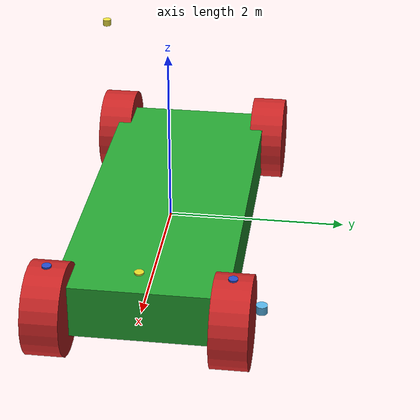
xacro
<?xml version="1.0"?>
<robot name="steer_bot" xmlns:xacro="http://wiki.ros.org/xacro">
  <!-- Include xacro for inertials, materials and wheels -->
  <xacro:arg name="gpu" default="false"/>
  <xacro:property name="gpu" value="$(arg gpu)" />

  <xacro:include filename="$(find gmc_simulation_truck)/urdf/wheel.xacro"/>

  <xacro:property name="robot_namespace" value="/steer_bot"/>

  <!-- Gazebo plugins -->
  <gazebo>
    <!-- Load ros_control plugin using the steer_bot_hardware_gazebo
    implementation of the hardware_interface::RobotHW -->
    <plugin name="gazebo_ros_control" filename="libgazebo_ros_control.so">
      <robotNamespace>${robot_namespace}</robotNamespace>
      <robotSimType>steer_bot_hardware_gazebo/SteerBotHardwareGazebo</robotSimType>
      <legacyModeNS>false</legacyModeNS>
    </plugin>
  </gazebo>

  <!-- Math constants -->
  <xacro:property name="deg_to_rad" value="0.01745329251994329577"/>

  <!-- Robot base dimensions -->
  <xacro:property name="base_length" value="4.19" />
  <xacro:property name="base_width" value="1.818" />
  <xacro:property name="base_height" value="0.6" />
  <xacro:property name="base_mass" value="1" />

  <!-- Wheel link dimensions -->
  <xacro:property name="wheel_radius" value="0.5" />
  <xacro:property name="wheel_thickness" value="0.4" />
  <xacro:property name="wheel_mass" value="1" />

  <!-- Steering link dimensions -->
  <xacro:property name="steer_radius" value="0.05" />
  <xacro:property name="steer_thickness" value="0.02" />
  <xacro:property name="steer_mass" value="1" />

  <!-- Axle positions -->
  <xacro:property name="axle_offset" value="0.05" />
  <xacro:property name="steer_offset" value="0.02" />

  <!-- Base link -->
  <link name="base_link">
    <visual>
      <origin xyz="0 0 0" rpy="0 0 0"/>
      <geometry>
        <box size="${base_length} ${base_width} ${base_height}"/>
      </geometry>
      <material name="green" />
    </visual>
    <collision>
      <origin xyz="0 0 0" rpy="0 0 0"/>
      <geometry>
        <box size="${base_length} ${base_width} ${base_height}"/>
      </geometry>
    </collision>
    <xacro:solid_cuboid_inertial
        rpy="0 0 0" xyz="0 0 0"
        mass="${base_mass}"
        x="${base_length}" y="${base_width}" z="${base_height}" />
  </link>

  <!-- Front steer and rear wheel joints required for ackermann_steering_controller -->
  <xacro:front_steer
    name="front"
    parent="base"
    steer_radius="${steer_radius}"
    steer_thickness="${steer_thickness}"
    steer_mass="${steer_mass}"
    base_length="${base_length}"
    base_width="${base_width}"
    axle_offset="${axle_offset}"
    steer_height="${wheel_radius+steer_offset}">
  </xacro:front_steer>

  <xacro:rear_wheel
    name="rear"
    parent="base"
    wheel_radius="${wheel_radius/4}"
    wheel_thickness="${wheel_thickness/2}"
    wheel_mass="${wheel_mass/32}">
    <origin xyz="${-base_length/2+axle_offset} 0 0" rpy="${-90 * deg_to_rad} 0 0"/>
  </xacro:rear_wheel>

  <!-- Steerable front wheels -->
  <xacro:front_wheel_lr
    name="front_right"
    parent="base"
    reflect="-1"
    wheel_radius="${wheel_radius}"
    wheel_thickness="${wheel_thickness}"
    wheel_mass="${wheel_mass}"
    steer_radius="${steer_radius}"
    steer_thickness="${steer_thickness}"
    steer_mass="${steer_mass}"
    base_length="${base_length}"
    base_width="${base_width}"
    axle_offset="${axle_offset}"
    steer_height="${wheel_radius+steer_offset}">
  </xacro:front_wheel_lr>
  <xacro:front_wheel_lr
    name="front_left"
    parent="base"
    reflect="1"
    wheel_radius="${wheel_radius}"
    wheel_thickness="${wheel_thickness}"
    wheel_mass="${wheel_mass}"
    steer_radius="${steer_radius}"
    steer_thickness="${steer_thickness}"
    steer_mass="${steer_mass}"
    base_length="${base_length}"
    base_width="${base_width}"
    axle_offset="${axle_offset}"
    steer_height="${wheel_radius+steer_offset}">
  </xacro:front_wheel_lr>

  <!-- Rear wheels -->
  <xacro:rear_wheel_lr
    name="rear_right"
    parent="base"
    wheel_radius="${wheel_radius}"
    wheel_thickness="${wheel_thickness}"
    wheel_mass="${wheel_mass}">
    <origin xyz="${-base_length/2+axle_offset} ${-base_width/2-axle_offset} 0" rpy="${-90 * deg_to_rad} 0 0"/>
  </xacro:rear_wheel_lr>
  <xacro:rear_wheel_lr
    name="rear_left"
    parent="base"
    wheel_radius="${wheel_radius}"
    wheel_thickness="${wheel_thickness}"
    wheel_mass="${wheel_mass}">
    <origin xyz="${-base_length/2+axle_offset} ${+base_width/2+axle_offset} 0" rpy="${-90 * deg_to_rad} 0 0"/>
  </xacro:rear_wheel_lr>

  <xacro:include filename="$(find robosense_description)/urdf/RS-16.urdf.xacro"/>
  <xacro:RS-16 parent="base_link" name="rslidar_front" topic="rslidar_front" hz="20" samples="900" gpu="${gpu}">
    <origin xyz="3.2 1.345 1.0" rpy="0.0 0 0" />
  </xacro:RS-16>

  <xacro:include filename="$(find robosense_description)/urdf/RS-16.urdf.xacro"/>
  <xacro:RS-16 parent="base_link" name="rslidar_back" topic="rslidar_back" hz="20" samples="900" gpu="${gpu}">
    <origin xyz="-3.2 -1.345 1.0" rpy="0.0 0 3.14159" />
  </xacro:RS-16>

  <!-- Colour -->
  <gazebo reference="base_link">
    <material>Gazebo/Green</material>
  </gazebo>
</robot>

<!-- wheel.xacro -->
<robot name="wheel" xmlns:xacro="http://wiki.ros.org/xacro">
  <!-- Include xacro for materials and inertials -->
  <xacro:include filename="$(find gmc_simulation_truck)/urdf/materials.xacro"/>
  <xacro:include filename="$(find gmc_simulation_truck)/urdf/inertials.xacro"/>

  <!-- Properties -->
  <xacro:property name="steer_effort" value="10.0"/>
  <xacro:property name="steer_velocity" value="5.0"/>
  <xacro:property name="steer_limit_deg" value="45.0"/>

  <!-- Bicycle model front steering link (required for steer_drive_controller) -->
  <xacro:macro name="front_steer"
    params="
      name
      parent
      steer_radius
      steer_thickness
      steer_mass
      base_length
      base_width
      axle_offset
      steer_height">
    <link name="${name}_steer_link">
      <visual>
        <origin xyz="0 0 0" rpy="0 0 0"/>
        <geometry>
          <cylinder radius="${steer_radius}" length="${steer_thickness}"/>
        </geometry>
        <material name="yellow" />
      </visual>
      <collision>
        <origin xyz="0 0 0" rpy="0 0 0"/>
        <geometry>
          <cylinder radius="${steer_radius}" length="${steer_thickness}"/>
        </geometry>
      </collision>
      <xacro:solid_cylinder_inertial
          rpy="0 0 0" xyz="0 0 0"
          mass="${steer_mass}"
          radius="${steer_radius}" length="${steer_thickness}" />
    </link>

    <joint name="${name}_steer_joint" type="revolute">
      <parent link="${parent}_link"/>
      <child link="${name}_steer_link"/>
      <origin xyz="${base_length/2-axle_offset} 0 ${steer_height}" rpy="0 0 0"/>
      <axis xyz="0 0 1"/>
      <limit effort="${steer_effort}"
             lower="${-180.0 * deg_to_rad}" upper="${180.0 * deg_to_rad}"
             velocity="${steer_velocity}"/>
    </joint>

    <transmission name="${name}_steer_joint_trans">
      <type>transmission_interface/SimpleTransmission</type>
      <actuator name="${name}_steer_joint_motor">
        <mechanicalReduction>1</mechanicalReduction>
        <hardwareInterface>hardware_interface/PositionJointInterface</hardwareInterface>
      </actuator>
      <joint name="${name}_steer_joint">
        <hardwareInterface>hardware_interface/PositionJointInterface</hardwareInterface>
      </joint>
    </transmission>

    <gazebo reference="${name}_steer_link">
      <material>Gazebo/Yellow</material>
    </gazebo>
  </xacro:macro>

  <!-- Car steering model front (steerable) wheel links (left/right) -->
  <xacro:macro name="front_wheel_lr"
    params="
      name
      parent
      reflect
      wheel_radius
      wheel_thickness
      wheel_mass
      steer_radius
      steer_thickness
      steer_mass
      base_length
      base_width
      axle_offset
      steer_height">
    <link name="${name}_steer_link">
      <visual>
        <origin xyz="0 0 0" rpy="0 0 0"/>
        <geometry>
          <cylinder radius="${steer_radius}" length="${steer_thickness}"/>
        </geometry>
        <material name="blue" />
      </visual>
      <collision>
        <origin xyz="0 0 0" rpy="0 0 0"/>
        <geometry>
          <cylinder radius="${steer_radius}" length="${steer_thickness}"/>
        </geometry>
      </collision>
      <xacro:solid_cylinder_inertial
          rpy="0 0 0" xyz="0 0 0"
          mass="${steer_mass}"
          radius="${steer_radius}" length="${steer_thickness}" />
    </link>

    <joint name="${name}_steer_joint" type="revolute">
      <parent link="${parent}_link"/>
      <child link="${name}_steer_link"/>
      <origin xyz="${base_length/2-axle_offset} ${reflect*(base_width/2+axle_offset)} ${steer_height}" rpy="0 0 0"/>
      <axis xyz="0 0 1"/>
      <limit effort="${steer_effort}"
             lower="${steer_limit_deg * deg_to_rad * -1.0}" upper="${steer_limit_deg * deg_to_rad}"
             velocity="${steer_velocity}"/>
    </joint>

    <link name="${name}_wheel_link">
      <visual>
        <origin xyz="0 0 0" rpy="0 0 0"/>
        <geometry>
          <cylinder radius="${wheel_radius}" length="${wheel_thickness}"/>
        </geometry>
        <material name="red" />
      </visual>
      <collision>
        <origin xyz="0 0 0" rpy="0 0 0"/>
        <geometry>
          <cylinder radius="${wheel_radius}" length="${wheel_thickness}"/>
        </geometry>
      </collision>
      <xacro:solid_cylinder_inertial
          rpy="0 0 0" xyz="0 0 0"
          mass="${wheel_mass}"
          radius="${wheel_radius}" length="${wheel_thickness}" />
    </link>

    <joint name="${name}_wheel_joint" type="continuous">
      <parent link="${name}_steer_link"/>
      <child link="${name}_wheel_link"/>
      <origin xyz="0 0 ${-steer_height}" rpy="${-90 * deg_to_rad} 0 0"/>
      <axis xyz="0 0 1"/>
    </joint>

    <transmission name="${name}_steer_joint_trans">
      <type>transmission_interface/SimpleTransmission</type>
      <actuator name="${name}_steer_joint_motor">
        <mechanicalReduction>1</mechanicalReduction>
        <hardwareInterface>hardware_interface/PositionJointInterface</hardwareInterface>
      </actuator>
      <joint name="${name}_steer_joint">
        <hardwareInterface>hardware_interface/PositionJointInterface</hardwareInterface>
      </joint>
    </transmission>

    <transmission name="${name}_wheel_joint_trans">
      <type>transmission_interface/SimpleTransmission</type>
      <actuator name="${name}_wheel_joint_motor">
        <mechanicalReduction>1</mechanicalReduction>
        <hardwareInterface>hardware_interface/VelocityJointInterface</hardwareInterface>
      </actuator>
      <joint name="${name}_wheel_joint">
        <hardwareInterface>hardware_interface/VelocityJointInterface</hardwareInterface>
      </joint>
    </transmission>

    <gazebo reference="${name}_steer_link">
      <material>Gazebo/Blue</material>
    </gazebo>

    <gazebo reference="${name}_wheel_link">
      <material>Gazebo/Red</material>
    </gazebo>
  </xacro:macro>

  <!-- Bicycle model rear wheel link (required for steer_drive_controller) -->
  <xacro:macro name="rear_wheel"
    params="
      name
      parent
      wheel_radius
      wheel_thickness
      wheel_mass
      *origin">
    <link name="${name}_wheel_link">
      <visual>
        <origin xyz="0 0 0" rpy="0 0 0"/>
        <geometry>
          <cylinder radius="${wheel_radius}" length="${wheel_thickness}"/>
        </geometry>
        <material name="yellow" />
      </visual>
      <collision>
        <origin xyz="0 0 0" rpy="0 0 0"/>
        <geometry>
          <cylinder radius="${wheel_radius}" length="${wheel_thickness}"/>
        </geometry>
      </collision>
      <xacro:solid_cylinder_inertial
          rpy="0 0 0" xyz="0 0 0"
          mass="${wheel_mass}"
          radius="${wheel_radius}" length="${wheel_thickness}" />
    </link>

    <joint name="${name}_wheel_joint" type="continuous">
      <parent link="${parent}_link"/>
      <child link="${name}_wheel_link"/>
      <xacro:insert_block name="origin"/>
      <axis xyz="0 0 1"/>
    </joint>

    <transmission name="${name}_wheel_joint_trans">
      <type>transmission_interface/SimpleTransmission</type>
      <actuator name="${name}_wheel_joint_motor">
        <mechanicalReduction>1</mechanicalReduction>
        <hardwareInterface>hardware_interface/VelocityJointInterface</hardwareInterface>
      </actuator>
      <joint name="${name}_wheel_joint">
        <hardwareInterface>hardware_interface/VelocityJointInterface</hardwareInterface>
      </joint>
    </transmission>

    <gazebo reference="${name}_wheel_link">
      <material>Gazebo/Yellow</material>
    </gazebo>
  </xacro:macro>

  <!-- Bicycle model front wheel link (passive - no transmission) -->
  <xacro:macro name="front_wheel"
    params="
      name
      parent
      wheel_radius
      wheel_thickness
      wheel_mass
      *origin">
    <link name="${name}_wheel_link">
      <visual>
        <origin xyz="0 0 0" rpy="0 0 0"/>
        <geometry>
          <cylinder radius="${wheel_radius}" length="${wheel_thickness}"/>
        </geometry>
        <material name="yellow" />
      </visual>
      <collision>
        <origin xyz="0 0 0" rpy="0 0 0"/>
        <geometry>
          <cylinder radius="${wheel_radius}" length="${wheel_thickness}"/>
        </geometry>
      </collision>
      <xacro:solid_cylinder_inertial
          rpy="0 0 0" xyz="0 0 0"
          mass="${wheel_mass}"
          radius="${wheel_radius}" length="${wheel_thickness}" />
    </link>

    <joint name="${name}_wheel_joint" type="continuous">
      <parent link="${parent}_link"/>
      <child link="${name}_wheel_link"/>
      <xacro:insert_block name="origin"/>
      <axis xyz="0 0 1"/>
    </joint>

    <gazebo reference="${name}_wheel_link">
      <material>Gazebo/Yellow</material>
    </gazebo>

    <gazebo reference="${name}_wheel_joint">
      <provideFeedback>true</provideFeedback>
    </gazebo>
  </xacro:macro>

  <!-- Car steering model rear wheel links (left/right) -->
  <xacro:macro name="rear_wheel_lr"
    params="
      name
      parent
      wheel_radius
      wheel_thickness
      wheel_mass
      *origin">
    <link name="${name}_wheel_link">
      <visual>
        <origin xyz="0 0 0" rpy="0 0 0"/>
        <geometry>
          <cylinder radius="${wheel_radius}" length="${wheel_thickness}"/>
        </geometry>
        <material name="red" />
      </visual>
      <collision>
        <origin xyz="0 0 0" rpy="0 0 0"/>
        <geometry>
          <cylinder radius="${wheel_radius}" length="${wheel_thickness}"/>
        </geometry>
      </collision>
      <xacro:solid_cylinder_inertial
          rpy="0 0 0" xyz="0 0 0"
          mass="${wheel_mass}"
          radius="${wheel_radius}" length="${wheel_thickness}" />
    </link>

    <joint name="${name}_wheel_joint" type="continuous">
      <parent link="${parent}_link"/>
      <child link="${name}_wheel_link"/>
      <xacro:insert_block name="origin"/>
      <axis xyz="0 0 1"/>
    </joint>

    <transmission name="${name}_wheel_joint_trans">
      <type>transmission_interface/SimpleTransmission</type>
      <actuator name="${name}_wheel_joint_motor">
        <mechanicalReduction>1</mechanicalReduction>
        <hardwareInterface>hardware_interface/VelocityJointInterface</hardwareInterface>
      </actuator>
      <joint name="${name}_wheel_joint">
        <hardwareInterface>hardware_interface/VelocityJointInterface</hardwareInterface>
      </joint>
    </transmission>

    <gazebo reference="${name}_wheel_link">
      <material>Gazebo/Red</material>
    </gazebo>
  </xacro:macro>
</robot>

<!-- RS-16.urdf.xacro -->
<robot xmlns:xacro="http://www.ros.org/wiki/xacro" name="RS-16">
  <xacro:property name="M_PI" value="3.1415926535897931" />
  <xacro:macro name="RS-16" params="*origin parent:=base_link name:=robosense topic:=/robosense_points hz:=20 lasers:=16 samples:=360 collision_range:=0.4 min_range:=0.4 max_range:=150.0 noise:=0.008 min_angle:=-${M_PI} max_angle:=${M_PI} gpu:=false">

    <joint name="${name}_base_mount_joint" type="fixed">
      <xacro:insert_block name="origin" />
      <parent link="${parent}"/>
      <child link="${name}_base_link"/>
    </joint>

    <link name="${name}_base_link">
      <inertial>
        <mass value="0.87"/>
        <origin xyz="0 0 0"/>
        <inertia ixx="0.001094695" ixy="0" ixz="0"
          iyy="0.001094695" iyz="0"
          izz="0.001245079"/>
      </inertial>
      <visual>
        <origin rpy="0 0 0" xyz="0 0 0"/>
        <geometry>
          <cylinder radius="0.0535" length="0.0817"/>
        </geometry>
      </visual>
      <collision>
        <origin rpy="0 0 0" xyz="0 0 0"/>
        <geometry>
          <cylinder radius="0.0535" length="0.0817"/>
        </geometry>
      </collision>
    </link>

    <joint name="${name}_base_scan_joint" type="fixed" >
      <origin xyz="0 0 0.039" rpy="0 0 0" />
      <parent link="${name}_base_link" />
      <child link="${name}"/>
    </joint>

    <link name="${name}">
      <inertial>
        <mass value="0.01"/>
        <origin xyz="0 0 0"/>
        <inertia ixx="1e-7" ixy="0" ixz="0" iyy="1e-7" iyz="0" izz="1e-7"/>
      </inertial>
    </link>

    <!-- Gazebo requires the robosense_gazebo_plugins package -->
    <gazebo reference="${name}">
      <xacro:if value="${gpu}">
        <sensor type="gpu_ray" name="${name}-RS16">
          <pose>0 0 0 0 0 0</pose>
          <visualize>false</visualize>
          <update_rate>${hz}</update_rate>
          <ray>
            <scan>
              <horizontal>
                <samples>${samples}</samples>
                <resolution>1</resolution>
                <min_angle>${min_angle}</min_angle>
                <max_angle>${max_angle}</max_angle>
              </horizontal>
              <vertical>
                <samples>${lasers}</samples>
                <resolution>1</resolution>
                <min_angle>-${15.0*M_PI/180.0}</min_angle>
                <max_angle> ${15.0*M_PI/180.0}</max_angle>
              </vertical>
            </scan>
            <range>
              <min>${collision_range}</min>
              <max>${max_range}</max>
              <resolution>0.001</resolution>
            </range>
            <noise>
              <type>gaussian</type>
              <mean>0.0</mean>
              <stddev>0.0</stddev>
            </noise>
          </ray>
          <plugin name="gazebo_ros_laser_controller" filename="libgazebo_ros_robosense_laser.so">
            <ros>
              <namespace>/${name}</namespace>
              <remapping>~/out:=${topic}</remapping>
            </ros>
            <tf_prefix>${tf_prefix}</tf_prefix>
            <frameName>${name}</frameName>
            <min_range>${min_range}</min_range>
            <max_range>${max_range}</max_range>
            <gaussian_noise>${noise}</gaussian_noise>
          </plugin>
        </sensor>
      </xacro:if>
      <xacro:unless value="${gpu}">
        <sensor type="ray" name="${name}-RS16">
          <pose>0 0 0 0 0 0</pose>
          <always_on>true</always_on>
          <visualize>false</visualize>
          <update_rate>${hz}</update_rate>
          <ray>
            <scan>
              <horizontal>
                <samples>${samples}</samples>
                <resolution>1</resolution>
                <min_angle>${min_angle}</min_angle>
                <max_angle>${max_angle}</max_angle>
              </horizontal>
              <vertical>
                <samples>${lasers}</samples>
                <resolution>1</resolution>
                <min_angle>-${15.0*M_PI/180.0}</min_angle>
                <max_angle> ${15.0*M_PI/180.0}</max_angle>
              </vertical>
            </scan>
            <range>
              <min>${collision_range}</min>
              <max>${max_range+1}</max>
              <resolution>0.001</resolution>
            </range>
            <noise>
              <type>gaussian</type>
              <mean>0.0</mean>
              <stddev>0.0</stddev>
            </noise>
          </ray>
          <plugin name="gazebo_ros_laser_controller" filename="libgazebo_ros_robosense_laser.so">
            <ros>
              <namespace>/${name}</namespace>
              <remapping>~/out:=${topic}</remapping>
            </ros>
            <frameName>${name}</frameName>
            <min_range>${min_range}</min_range>
            <max_range>${max_range}</max_range>
            <gaussian_noise>${noise}</gaussian_noise>
          </plugin>
        </sensor>
      </xacro:unless>
    </gazebo>

  </xacro:macro>
</robot>
